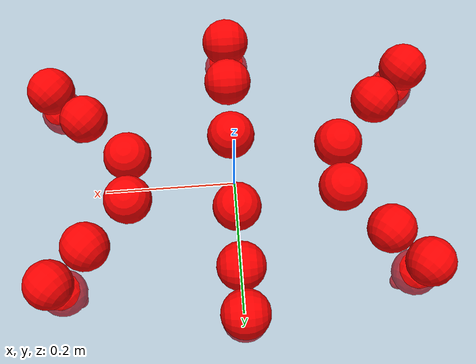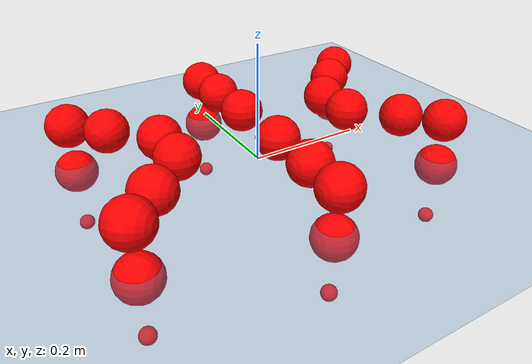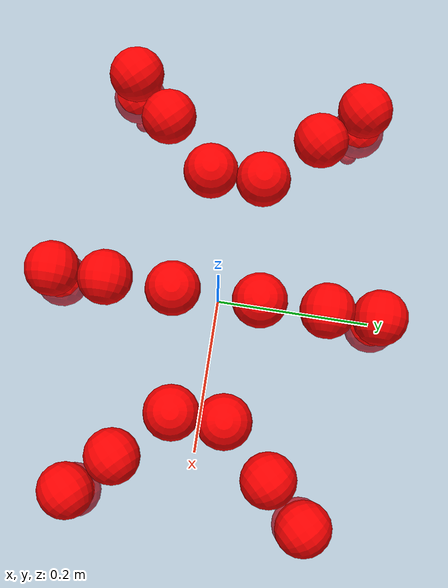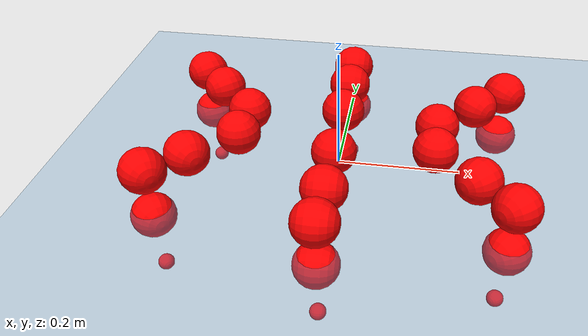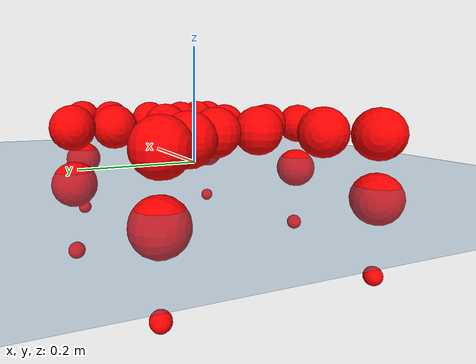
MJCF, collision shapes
<mujoco model="Golem">
  <compiler angle="radian" assetdir="assets" balanceinertia="true" inertiafromgeom="false"/>

  <option timestep="0.005" density="1.2" viscosity="2e-05"/>

  <size nkey="1"/>

  <visual>
    <quality shadowsize="8192"/>
    <map shadowclip="0.5"/>
  </visual>

  <default>
    <default class="/">
      <joint armature="0.01" damping="0.01" frictionloss="0.01"/>
      <geom contype="0" conaffinity="0" group="1" solref="-1000 -80"/>
      <site size="0.01 0.005 0.005" group="5"/>
      <general forcelimited="true" biastype="affine" gainprm="25" biasprm="0 -25 -0.5"/>
      <default class="visual">
        <geom type="mesh" group="2"/>
      </default>
      <default class="collision">
        <geom group="3"/>
      </default>
      <default class="foot">
        <geom size="0.01 0 0" condim="6" group="4" priority="1" solimp="0.015 1 0.01"/>
      </default>
      <default class="reward_collision_sphere">
        <geom group="5" rgba="1 0 0 1"/>
      </default>
    </default>
  </default>

  <asset>
    <texture type="skybox" colorspace="auto" name="//unnamed_texture_0" builtin="gradient" rgb1="0.95 0.95 0.95" rgb2="0.95 0.95 0.95" width="100" height="600"/>
    <texture type="2d" colorspace="auto" name="texplane" builtin="checker" rgb1="0.345 0.575 0.748" rgb2="0.345 0.575 0.748" markrgb="1 1 1" width="512" height="512"/>
    <material name="MatPlane" class="/" texture="texplane" texuniform="true" texrepeat="2 2" specular="0.9"/>
    <mesh name="body" class="/" file="body.stl" scale="0.001 0.001 0.001"/>
    <mesh name="coxa" class="/" file="coxa.stl" scale="0.001 0.001 0.001"/>
    <mesh name="femur" class="/" file="femur.stl" scale="0.001 0.001 0.001"/>
    <mesh name="tibia" class="/" file="tibia.stl" scale="0.001 0.001 0.001"/>
    <mesh name="tarsus" class="/" file="tarsus.stl" scale="0.001 0.001 0.001"/>
  </asset>

  <worldbody>
    <geom name="floor" class="/" size="100 100 0.125" type="plane" group="0" material="MatPlane"/>
    <light name="toplight_shadow" class="/" pos="0 0 5" dir="0.0990148 0.0990148 -0.990148" type="directional" ambient="0.04 0.04 0.04" diffuse="0.55 0.55 0.55" specular="0.12 0.12 0.12"/>
    <light name="toplight_fill" class="/" pos="0 0 5" dir="0.0990148 0.0990148 -0.990148" type="directional" castshadow="false" ambient="0.04 0.04 0.04" diffuse="0.3 0.3 0.3" specular="0.08 0.08 0.08"/>
    <body name="trunk" pos="-3.74941e-06 -0.000384859 0.000403414" quat="1 -0.000210128 8.87457e-05 -7.41709e-05">
      <inertial pos="-0.000583236 0.000742709 -0.00403124" quat="0.999993 -0.00320027 0.000282015 0.00185333" mass="2.63277" diaginertia="0.0104066 0.00116089 0.0113707"/>
      <joint name="//unnamed_joint_0" type="free"/>
      <geom name="//unnamed_geom_1" class="/" pos="0 0 0.0656643" quat="1 0 0 0" type="mesh" rgba="0.9 0.9 0.9 1" mesh="body"/>
      <site name="imu" class="/" pos="0.132655 0.00326489 0.111544" size="0.00893195"/>
      <camera name="track" class="/" pos="0 -1.29411 0" quat="0.707107 0.707107 0 0" mode="trackcom"/>
      <camera name="ego_camera" class="/" pos="0.130849 0 0.102601" quat="-0.5 -0.5 0.5 0.5"/>
      <body name="coxa_RR" pos="-0.178806 -0.0546962 0.0673427" quat="0.382433 -0.000633177 -0.000676276 -0.923983">
        <inertial pos="0.00020729 -0.000727537 0.00132317" quat="0.999988 -0.00244103 -0.00421202 -0.000882614" mass="0.144822" diaginertia="0.0104531 0.00115622 0.0117161"/>
        <joint name="coxa_joint_RR" class="/" pos="0 0 0" axis="0.00538276 0.00280078 -0.999982" range="-3.15844 3.15232" armature="0.00903972" damping="0.00116996" frictionloss="0.00852565"/>
        <geom name="//unnamed_geom_2" class="/" type="mesh" rgba="0.2 0.2 0.2 1" mesh="coxa"/>
        <geom name="//unnamed_geom_3" class="reward_collision_sphere" size="0.0357278" pos="-0.0301958 0 0"/>
        <body name="femur_RR" pos="0.0605019 0.0014317 0.00017067" quat="0.499746 -0.499487 0.500225 0.50054">
          <inertial pos="-0.000189387 0.0015329 -0.000806833" quat="0.999997 -0.00120896 -0.000190893 -0.00208163" mass="0.141211" diaginertia="0.0101226 0.00113414 0.0112342"/>
          <joint name="femur_joint_RR" class="/" pos="0 0 0" axis="0.00145577 -0.000355279 -0.999999" range="-3.15389 3.15374" armature="0.00923044" damping="0.00169936" frictionloss="0.00891394"/>
          <geom name="//unnamed_geom_4" class="/" type="mesh" rgba="0.9 0.9 0.9 1" mesh="femur"/>
          <geom name="//unnamed_geom_5" class="reward_collision_sphere" size="0.0357278"/>
          <body name="tibia_RR" pos="0.000118511 -0.071447 0.000229449" quat="-3.62186e-05 1 -3.93729e-05 2.5345e-05">
            <inertial pos="6.76274e-05 0.00154922 0.000253183" quat="1 -6.26043e-05 0.000231781 -1.56944e-05" mass="0.143033" diaginertia="0.0103411 0.00113867 0.011321"/>
            <joint name="tibia_joint_RR" class="/" pos="0 0 0" axis="0.00157302 0.00674198 0.999976" range="-3.11173 3.14162" armature="0.00929812" damping="0" frictionloss="0.00980941"/>
            <geom name="//unnamed_geom_6" class="/" type="mesh" rgba="0.2 0.2 0.2 1" mesh="tibia"/>
            <geom name="//unnamed_geom_7" class="reward_collision_sphere" size="0.0357278"/>
            <body name="tarsus_RR" pos="0.0871706 0.000595503 -0.00185847" quat="1 7.84339e-05 -5.51091e-06 0.000343923">
              <inertial pos="0.0591383 0.000123133 -0.000147715" quat="0.50148 0.501863 0.496033 0.500603" mass="0.140672" diaginertia="0.010244 0.00112663 0.0114981"/>
              <joint name="tarsus_joint_RR" class="/" pos="0 0 0" axis="8.3087e-05 1.18071e-06 1" range="-3.12351 3.13068" armature="0.00915684" damping="0.0034749" frictionloss="0.00916836"/>
              <geom name="//unnamed_geom_8" class="/" type="mesh" rgba="0.9 0.9 0.9 1" mesh="tarsus"/>
              <geom name="foot_1" class="foot" size="0.00866197" pos="0.112731 0 0" quat="0 -0.707107 0 0.707107"/>
              <geom name="//unnamed_geom_10" class="reward_collision_sphere" size="0.0357278"/>
              <geom name="//unnamed_geom_11" class="reward_collision_sphere" size="0.0133979" pos="0.108202 0 0"/>
              <site name="foot_1" class="foot" pos="0.112731 0 0" quat="0 -0.707107 0 0.707107" size="0.00893195"/>
            </body>
          </body>
        </body>
      </body>
      <body name="coxa_RM" pos="0.00129 -0.087906 0.0650453" quat="0.707096 3.81908e-05 -1.01441e-05 -0.707118">
        <inertial pos="0.000632721 -0.00022417 -0.000395247" quat="0.999961 -0.00305965 0.00826358 0.00102112" mass="0.14744" diaginertia="0.0105756 0.00118099 0.0116616"/>
        <joint name="coxa_joint_RM" class="/" pos="0 0 0" axis="-0.00695022 0.0019586 -0.999974" range="-3.14089 3.156" armature="0.00912833" damping="0.0132247" frictionloss="0.00877617"/>
        <geom name="//unnamed_geom_12" class="/" type="mesh" rgba="0.2 0.2 0.2 1" mesh="coxa"/>
        <geom name="//unnamed_geom_13" class="reward_collision_sphere" size="0.0357278" pos="-0.0301958 0 0"/>
        <body name="femur_RM" pos="0.0571898 -0.000981518 -0.000441182" quat="0.499894 -0.499979 0.500267 0.49986">
          <inertial pos="-0.000221511 -0.000287917 -0.000131807" quat="0.999998 0.000857584 -0.000239426 -0.00179074" mass="0.141391" diaginertia="0.010255 0.00114144 0.0115313"/>
          <joint name="femur_joint_RM" class="/" pos="0 0 0" axis="-0.000189806 3.45051e-05 -1" range="-3.1297 3.12015" armature="0.00884663" damping="0.0065274" frictionloss="0.00939737"/>
          <geom name="//unnamed_geom_14" class="/" type="mesh" rgba="0.9 0.9 0.9 1" mesh="femur"/>
          <geom name="//unnamed_geom_15" class="reward_collision_sphere" size="0.0357278"/>
          <body name="tibia_RM" pos="0.00198232 -0.0688864 -0.000913875" quat="-0.000120613 1 0.000158366 0.000289286">
            <inertial pos="0.000356437 0.000253692 0.000328777" quat="1 -0.000623157 0.000220853 -0.000437806" mass="0.144784" diaginertia="0.0103585 0.00113099 0.0114904"/>
            <joint name="tibia_joint_RM" class="/" pos="0 0 0" axis="-0.00283051 -0.00501748 0.999983" range="-3.15913 3.13493" armature="0.008275" damping="0.00697829" frictionloss="0.00952669"/>
            <geom name="//unnamed_geom_16" class="/" type="mesh" rgba="0.2 0.2 0.2 1" mesh="tibia"/>
            <geom name="//unnamed_geom_17" class="reward_collision_sphere" size="0.0357278"/>
            <body name="tarsus_RM" pos="0.0862225 -0.00156509 0.000648467" quat="1 -3.92106e-05 -2.24775e-05 5.16442e-05">
              <inertial pos="0.0603101 0.00101539 0.000232085" quat="0.499402 0.500206 0.499209 0.501181" mass="0.145207" diaginertia="0.0104854 0.00115245 0.0115452"/>
              <joint name="tarsus_joint_RM" class="/" pos="0 0 0" axis="-0.00325549 0.00272139 0.999991" range="-3.15761 3.13653" armature="0.00936822" damping="0.0036036" frictionloss="0.00887886"/>
              <geom name="//unnamed_geom_18" class="/" type="mesh" rgba="0.9 0.9 0.9 1" mesh="tarsus"/>
              <geom name="foot_2" class="foot" size="0.00914874" pos="0.112731 0 0" quat="0 -0.707107 0 0.707107"/>
              <geom name="//unnamed_geom_20" class="reward_collision_sphere" size="0.0357278"/>
              <geom name="//unnamed_geom_21" class="reward_collision_sphere" size="0.0133979" pos="0.108202 0 0"/>
              <site name="foot_2" class="foot" pos="0.112731 0 0" quat="0 -0.707107 0 0.707107" size="0.00893195"/>
            </body>
          </body>
        </body>
      </body>
      <body name="coxa_RF" pos="0.177956 -0.0556343 0.0666009" quat="0.923884 -2.66551e-05 -2.40436e-06 -0.382674">
        <inertial pos="-0.00129671 0.000327557 -6.98004e-05" quat="0.999997 -0.00149442 -0.0012642 0.00167014" mass="0.143059" diaginertia="0.0105659 0.00117079 0.0115904"/>
        <joint name="coxa_joint_RF" class="/" pos="0 0 0" axis="0.00383277 0.00421074 -0.999984" range="-3.13186 3.14753" armature="0.00878668" damping="0.0166001" frictionloss="0.00942963"/>
        <geom name="//unnamed_geom_22" class="/" type="mesh" rgba="0.2 0.2 0.2 1" mesh="coxa"/>
        <geom name="//unnamed_geom_23" class="reward_collision_sphere" size="0.0357278" pos="-0.0301958 0 0"/>
        <body name="femur_RF" pos="0.0604996 0.000272374 -0.000378044" quat="0.500132 -0.500128 0.499695 0.500044">
          <inertial pos="0.000662948 -0.000449754 0.000398984" quat="0.999992 0.00232665 -0.000141699 -0.00333725" mass="0.143611" diaginertia="0.0103567 0.00113383 0.0114336"/>
          <joint name="femur_joint_RF" class="/" pos="0 0 0" axis="-0.00406111 0.00260819 -0.999988" stiffness="8.24619e-05" range="-3.15913 3.13995" armature="0.00919551" damping="0.00786826" frictionloss="0.00917016"/>
          <geom name="//unnamed_geom_24" class="/" type="mesh" rgba="0.9 0.9 0.9 1" mesh="femur"/>
          <geom name="//unnamed_geom_25" class="reward_collision_sphere" size="0.0357278"/>
          <body name="tibia_RF" pos="0.00150559 -0.0705541 7.82817e-05" quat="9.40077e-05 1 0.000541218 0.000180388">
            <inertial pos="-0.000175091 -0.000990598 -0.000546668" quat="0.999986 -0.00372953 -0.00288609 0.00225424" mass="0.137362" diaginertia="0.0101924 0.00110604 0.0113257"/>
            <joint name="tibia_joint_RF" class="/" pos="0 0 0" axis="0.000836108 0.00427969 0.99999" range="-3.12057 3.13631" armature="0.00887131" damping="0" frictionloss="0.00921487"/>
            <geom name="//unnamed_geom_26" class="/" type="mesh" rgba="0.2 0.2 0.2 1" mesh="tibia"/>
            <geom name="//unnamed_geom_27" class="reward_collision_sphere" size="0.0357278"/>
            <body name="tarsus_RF" pos="0.0859015 0.000583422 -0.000671386" quat="1 -3.10512e-05 -3.61254e-05 -7.21996e-05">
              <inertial pos="0.0591818 0.000368505 -0.000554037" quat="0.498745 0.50354 0.499958 0.497738" mass="0.144385" diaginertia="0.0105831 0.00113874 0.011573"/>
              <joint name="tarsus_joint_RF" class="/" pos="0 0 0" axis="-0.0113665 0.00380783 0.999928" range="-3.14942 3.13836" armature="0.00906518" damping="0.00666374" frictionloss="0.00859848"/>
              <geom name="//unnamed_geom_28" class="/" type="mesh" rgba="0.9 0.9 0.9 1" mesh="tarsus"/>
              <geom name="foot_3" class="foot" size="0.00859541" pos="0.112731 0 0" quat="0 -0.707107 0 0.707107"/>
              <geom name="//unnamed_geom_30" class="reward_collision_sphere" size="0.0357278"/>
              <geom name="//unnamed_geom_31" class="reward_collision_sphere" size="0.0133979" pos="0.108202 0 0"/>
              <site name="foot_3" class="foot" pos="0.112731 0 0" quat="0 -0.707107 0 0.707107" size="0.00893195"/>
            </body>
          </body>
        </body>
      </body>
      <body name="coxa_LR" pos="-0.178072 0.056238 0.0668635" quat="0.382219 1.58323e-05 6.60384e-05 0.924072">
        <inertial pos="0.00114124 0.000279044 -0.000342559" quat="1 -1.73156e-05 -0.000522674 -0.000257343" mass="0.142759" diaginertia="0.01045 0.00114141 0.0114151"/>
        <joint name="coxa_joint_LR" class="/" pos="0 0 0" axis="-0.00544741 0.00177102 -0.999984" range="-3.11927 3.16227" armature="0.00883182" damping="0.0105453" frictionloss="0.00891615"/>
        <geom name="//unnamed_geom_32" class="/" type="mesh" rgba="0.2 0.2 0.2 1" mesh="coxa"/>
        <geom name="//unnamed_geom_33" class="reward_collision_sphere" size="0.0357278" pos="-0.0301958 0 0"/>
        <body name="femur_LR" pos="0.061559 -0.00257676 -0.00116607" quat="0.500061 -0.499775 0.49998 0.500185">
          <inertial pos="0.000403685 -0.000200752 -0.000983828" quat="0.999972 0.00728518 -0.00117602 0.00101461" mass="0.144601" diaginertia="0.0103776 0.00114648 0.0114517"/>
          <joint name="femur_joint_LR" class="/" pos="0 0 0" axis="0.00831249 0.00769541 0.999936" range="-3.12064 3.12048" armature="0.00977603" damping="0.00640073" frictionloss="0.00878598"/>
          <geom name="//unnamed_geom_34" class="/" type="mesh" rgba="0.9 0.9 0.9 1" mesh="femur"/>
          <geom name="//unnamed_geom_35" class="reward_collision_sphere" size="0.0357278"/>
          <body name="tibia_LR" pos="0.000633267 -0.070726 -0.0018658" quat="0.00024125 1 0.000151021 -0.000270974">
            <inertial pos="0.000679893 -0.000572599 0.000480104" quat="1 0.000799087 -0.000224487 -0.000135264" mass="0.144247" diaginertia="0.0103375 0.00111898 0.0114951"/>
            <joint name="tibia_joint_LR" class="/" pos="0 0 0" axis="-1.1903e-05 -3.20996e-05 -1" range="-3.10991 3.13967" armature="0.00874142" damping="0.00886638" frictionloss="0.00896422"/>
            <geom name="//unnamed_geom_36" class="/" type="mesh" rgba="0.2 0.2 0.2 1" mesh="tibia"/>
            <geom name="//unnamed_geom_37" class="reward_collision_sphere" size="0.0357278"/>
            <body name="tarsus_LR" pos="0.0871537 0.00099509 0.0015545" quat="1 -7.88507e-05 7.75437e-06 4.20953e-05">
              <inertial pos="0.0610602 -0.000445762 0.000440745" quat="0.500045 0.499646 0.5004 0.499908" mass="0.141722" diaginertia="0.0104372 0.00117339 0.0113635"/>
              <joint name="tarsus_joint_LR" class="/" pos="0 0 0" axis="0.00204637 -0.00179259 -0.999996" range="-3.13777 3.12728" armature="0.00892709" damping="0.000360176" frictionloss="0.00921771"/>
              <geom name="//unnamed_geom_38" class="/" type="mesh" rgba="0.9 0.9 0.9 1" mesh="tarsus"/>
              <geom name="foot_4" class="foot" size="0.00865626" pos="0.112731 0 0" quat="0.707107 0 -0.707107 0"/>
              <geom name="//unnamed_geom_40" class="reward_collision_sphere" size="0.0357278"/>
              <geom name="//unnamed_geom_41" class="reward_collision_sphere" size="0.0133979" pos="0.108202 0 0"/>
              <site name="foot_4" class="foot" pos="0.112731 0 0" quat="0.707107 0 -0.707107 0" size="0.00893195"/>
            </body>
          </body>
        </body>
      </body>
      <body name="coxa_LM" pos="1.86312e-05 0.0840027 0.0674891" quat="0.707288 0.000227145 -0.00011222 0.706925">
        <inertial pos="0.000333242 -0.000177073 -0.000590151" quat="0.999999 -2.64253e-05 -0.00110761 0.000623923" mass="0.143374" diaginertia="0.0101431 0.00112842 0.0112836"/>
        <joint name="coxa_joint_LM" class="/" pos="0 0 0" axis="0.0015821 0.00294685 -0.999994" range="-3.14329 3.14224" armature="0.00857779" damping="0.00491702" frictionloss="0.00897469"/>
        <geom name="//unnamed_geom_42" class="/" type="mesh" rgba="0.2 0.2 0.2 1" mesh="coxa"/>
        <geom name="//unnamed_geom_43" class="reward_collision_sphere" size="0.0357278" pos="-0.0301958 0 0"/>
        <body name="femur_LM" pos="0.0563917 3.06259e-05 -0.000477464" quat="0.499823 -0.500088 0.50005 0.500039">
          <inertial pos="-8.95665e-05 4.29311e-05 -0.00194704" quat="1 0.000339869 0.000132849 0.000520501" mass="0.144833" diaginertia="0.0104555 0.00115562 0.0114723"/>
          <joint name="femur_joint_LM" class="/" pos="0 0 0" axis="-0.00100513 -0.00601639 0.999981" range="-3.14533 3.10434" armature="0.00917466" damping="0" frictionloss="0.00863393"/>
          <geom name="//unnamed_geom_44" class="/" type="mesh" rgba="0.9 0.9 0.9 1" mesh="femur"/>
          <geom name="//unnamed_geom_45" class="reward_collision_sphere" size="0.0357278"/>
          <body name="tibia_LM" pos="-0.000256671 -0.0665995 0.00124655" quat="-0.000173677 1 -0.000268822 0.000386847">
            <inertial pos="-0.00109363 0.000299012 -0.000265811" quat="0.999998 0.000119226 0.00120297 -0.00128389" mass="0.137669" diaginertia="0.0100685 0.00110336 0.011059"/>
            <joint name="tibia_joint_LM" class="/" pos="0 0 0" axis="-0.002477 -0.00343383 -0.999991" range="-3.12943 3.15722" armature="0.00989117" damping="0" frictionloss="0.00914484"/>
            <geom name="//unnamed_geom_46" class="/" type="mesh" rgba="0.2 0.2 0.2 1" mesh="tibia"/>
            <geom name="//unnamed_geom_47" class="reward_collision_sphere" size="0.0357278"/>
            <body name="tarsus_LM" pos="0.088962 -0.000355658 -0.000981791" quat="1 -0.000204408 0.000181931 -0.000180229">
              <inertial pos="0.0618973 -0.000958384 -0.000354206" quat="0.497448 0.503467 0.498998 0.500067" mass="0.139592" diaginertia="0.0101278 0.00107833 0.0112135"/>
              <joint name="tarsus_joint_LM" class="/" pos="0 0 0" axis="0.00182556 0.000313853 -0.999998" stiffness="0.00207796" range="-3.1395 3.14026" armature="0.00882631" damping="0.0138793" frictionloss="0.00969833"/>
              <geom name="//unnamed_geom_48" class="/" type="mesh" rgba="0.9 0.9 0.9 1" mesh="tarsus"/>
              <geom name="foot_5" class="foot" size="0.00883169" pos="0.112731 0 0" quat="0.707107 0 -0.707107 0"/>
              <geom name="//unnamed_geom_50" class="reward_collision_sphere" size="0.0357278"/>
              <geom name="//unnamed_geom_51" class="reward_collision_sphere" size="0.0133979" pos="0.108202 0 0"/>
              <site name="foot_5" class="foot" pos="0.112731 0 0" quat="0.707107 0 -0.707107 0" size="0.00893195"/>
            </body>
          </body>
        </body>
      </body>
      <body name="coxa_LF" pos="0.179285 0.0535899 0.0668377" quat="0.923873 1.27152e-05 0.000141481 0.382698">
        <inertial pos="-0.00110751 -0.0018077 0.000298466" quat="0.999995 0.00231824 0.00046732 -0.00187203" mass="0.142386" diaginertia="0.0102788 0.00110246 0.0113488"/>
        <joint name="coxa_joint_LF" class="/" pos="0 0 0" axis="0.00292977 0.00206607 -0.999994" range="-3.1243 3.13632" armature="0.00840959" damping="0" frictionloss="0.00885351"/>
        <geom name="//unnamed_geom_52" class="/" type="mesh" rgba="0.2 0.2 0.2 1" mesh="coxa"/>
        <geom name="//unnamed_geom_53" class="reward_collision_sphere" size="0.0357278" pos="-0.0301958 0 0"/>
        <body name="femur_LF" pos="0.0600949 0.00181736 0.000430887" quat="0.5 -0.499999 0.500001 0.499999">
          <inertial pos="-7.04406e-05 0.000562674 -0.000570868" quat="1 -0.000247445 -0.000281856 0.000439843" mass="0.139657" diaginertia="0.0100128 0.00111991 0.0112364"/>
          <joint name="femur_joint_LF" class="/" pos="0 0 0" axis="-0.00664696 0.00218077 0.999976" range="-3.12068 3.14586" armature="0.00897266" damping="0.000726881" frictionloss="0.00907867"/>
          <geom name="//unnamed_geom_54" class="/" type="mesh" rgba="0.9 0.9 0.9 1" mesh="femur"/>
          <geom name="//unnamed_geom_55" class="reward_collision_sphere" size="0.0357278"/>
          <body name="tibia_LF" pos="-0.000376935 -0.0718557 -0.000447017" quat="0.000168348 1 0.000315005 -0.00020618">
            <inertial pos="-0.000587066 0.00132931 0.000839569" quat="0.999999 -0.000618312 -0.000875694 -0.000766896" mass="0.142055" diaginertia="0.0103908 0.00114105 0.0114959"/>
            <joint name="tibia_joint_LF" class="/" pos="0 0 0" axis="-0.00148736 -0.000866644 -0.999999" range="-3.13451 3.13196" armature="0.00941957" damping="0" frictionloss="0.00871929"/>
            <geom name="//unnamed_geom_56" class="/" type="mesh" rgba="0.2 0.2 0.2 1" mesh="tibia"/>
            <geom name="//unnamed_geom_57" class="reward_collision_sphere" size="0.0357278"/>
            <body name="tarsus_LF" pos="0.0898738 0.000480729 -0.00120931" quat="1 -2.27312e-06 -6.60836e-05 -5.46594e-05">
              <inertial pos="0.0598955 -9.83506e-05 0.000429711" quat="0.503315 0.503353 0.491347 0.501885" mass="0.144273" diaginertia="0.0103649 0.00113481 0.0112971"/>
              <joint name="tarsus_joint_LF" class="/" pos="0 0 0" axis="0.00819771 0.00454816 -0.999956" stiffness="0.0290866" range="-3.15768 3.13896" armature="0.00880982" damping="0.0243716" frictionloss="0.00936617"/>
              <geom name="//unnamed_geom_58" class="/" type="mesh" rgba="0.9 0.9 0.9 1" mesh="tarsus"/>
              <geom name="foot_6" class="foot" size="0.00894938" pos="0.112731 0 0" quat="0.707107 0 -0.707107 0"/>
              <geom name="//unnamed_geom_60" class="reward_collision_sphere" size="0.0357278"/>
              <geom name="//unnamed_geom_61" class="reward_collision_sphere" size="0.0133979" pos="0.108202 0 0"/>
              <site name="foot_6" class="foot" pos="0.112731 0 0" quat="0.707107 0 -0.707107 0" size="0.00893195"/>
            </body>
          </body>
        </body>
      </body>
    </body>
  </worldbody>

  <contact>
    <pair class="/" geom1="floor" geom2="foot_1" name="//unnamed_contact_0"/>
    <pair class="/" geom1="floor" geom2="foot_2" name="//unnamed_contact_1"/>
    <pair class="/" geom1="floor" geom2="foot_3" name="//unnamed_contact_2"/>
    <pair class="/" geom1="floor" geom2="foot_4" name="//unnamed_contact_3"/>
    <pair class="/" geom1="floor" geom2="foot_5" name="//unnamed_contact_4"/>
    <pair class="/" geom1="floor" geom2="foot_6" name="//unnamed_contact_5"/>
  </contact>

  <actuator>
    <general name="coxa_joint_RR" class="/" joint="coxa_joint_RR" forcerange="-6.54395 6.54395" gainprm="21.4576" biasprm="0 -21.4576 -0.455908"/>
    <general name="femur_joint_RR" class="/" joint="femur_joint_RR" forcerange="-6.41272 6.41272" gainprm="21.4576" biasprm="0 -21.4576 -0.455908"/>
    <general name="tibia_joint_RR" class="/" joint="tibia_joint_RR" forcerange="-6.46949 6.46949" gainprm="21.4576" biasprm="0 -21.4576 -0.455908"/>
    <general name="tarsus_joint_RR" class="/" joint="tarsus_joint_RR" forcerange="-6.6386 6.6386" gainprm="21.4576" biasprm="0 -21.4576 -0.455908"/>
    <general name="coxa_joint_RM" class="/" joint="coxa_joint_RM" forcerange="-6.75399 6.75399" gainprm="21.4576" biasprm="0 -21.4576 -0.455908"/>
    <general name="femur_joint_RM" class="/" joint="femur_joint_RM" forcerange="-6.65074 6.65074" gainprm="21.4576" biasprm="0 -21.4576 -0.455908"/>
    <general name="tibia_joint_RM" class="/" joint="tibia_joint_RM" forcerange="-6.3757 6.3757" gainprm="21.4576" biasprm="0 -21.4576 -0.455908"/>
    <general name="tarsus_joint_RM" class="/" joint="tarsus_joint_RM" forcerange="-6.27927 6.27927" gainprm="21.4576" biasprm="0 -21.4576 -0.455908"/>
    <general name="coxa_joint_RF" class="/" joint="coxa_joint_RF" forcerange="-6.40809 6.40809" gainprm="21.4576" biasprm="0 -21.4576 -0.455908"/>
    <general name="femur_joint_RF" class="/" joint="femur_joint_RF" forcerange="-6.64557 6.64557" gainprm="21.4576" biasprm="0 -21.4576 -0.455908"/>
    <general name="tibia_joint_RF" class="/" joint="tibia_joint_RF" forcerange="-6.31031 6.31031" gainprm="21.4576" biasprm="0 -21.4576 -0.455908"/>
    <general name="tarsus_joint_RF" class="/" joint="tarsus_joint_RF" forcerange="-6.61795 6.61795" gainprm="21.4576" biasprm="0 -21.4576 -0.455908"/>
    <general name="coxa_joint_LR" class="/" joint="coxa_joint_LR" forcerange="-6.5405 6.5405" gainprm="21.4576" biasprm="0 -21.4576 -0.455908"/>
    <general name="femur_joint_LR" class="/" joint="femur_joint_LR" forcerange="-6.49406 6.49406" gainprm="21.4576" biasprm="0 -21.4576 -0.455908"/>
    <general name="tibia_joint_LR" class="/" joint="tibia_joint_LR" forcerange="-6.40727 6.40727" gainprm="21.4576" biasprm="0 -21.4576 -0.455908"/>
    <general name="tarsus_joint_LR" class="/" joint="tarsus_joint_LR" forcerange="-6.50257 6.50257" gainprm="21.4576" biasprm="0 -21.4576 -0.455908"/>
    <general name="coxa_joint_LM" class="/" joint="coxa_joint_LM" forcerange="-6.51609 6.51609" gainprm="21.4576" biasprm="0 -21.4576 -0.455908"/>
    <general name="femur_joint_LM" class="/" joint="femur_joint_LM" forcerange="-6.4679 6.4679" gainprm="21.4576" biasprm="0 -21.4576 -0.455908"/>
    <general name="tibia_joint_LM" class="/" joint="tibia_joint_LM" forcerange="-6.49979 6.49979" gainprm="21.4576" biasprm="0 -21.4576 -0.455908"/>
    <general name="tarsus_joint_LM" class="/" joint="tarsus_joint_LM" forcerange="-6.28326 6.28326" gainprm="21.4576" biasprm="0 -21.4576 -0.455908"/>
    <general name="coxa_joint_LF" class="/" joint="coxa_joint_LF" forcerange="-6.73116 6.73116" gainprm="21.4576" biasprm="0 -21.4576 -0.455908"/>
    <general name="femur_joint_LF" class="/" joint="femur_joint_LF" forcerange="-6.48352 6.48352" gainprm="21.4576" biasprm="0 -21.4576 -0.455908"/>
    <general name="tibia_joint_LF" class="/" joint="tibia_joint_LF" forcerange="-6.56802 6.56802" gainprm="21.4576" biasprm="0 -21.4576 -0.455908"/>
    <general name="tarsus_joint_LF" class="/" joint="tarsus_joint_LF" forcerange="-6.53692 6.53692" gainprm="21.4576" biasprm="0 -21.4576 -0.455908"/>
  </actuator>

  <sensor>
    <gyro site="imu" name="imu_angular_velocity"/>
    <velocimeter site="imu" name="imu_linear_velocity"/>
    <framelinvel objtype="site" objname="foot_1" name="foot_1_global_linear_velocity"/>
    <framelinvel objtype="site" objname="foot_2" name="foot_2_global_linear_velocity"/>
    <framelinvel objtype="site" objname="foot_3" name="foot_3_global_linear_velocity"/>
    <framelinvel objtype="site" objname="foot_4" name="foot_4_global_linear_velocity"/>
    <framelinvel objtype="site" objname="foot_5" name="foot_5_global_linear_velocity"/>
    <framelinvel objtype="site" objname="foot_6" name="foot_6_global_linear_velocity"/>
  </sensor>

  <keyframe>
    <key name="home" qpos="0 0 0.1457 1 0 0 0 0 0 0 0 0 0 0 0 0 0 0 0 0 0 0 0 0 0 0 0 0 0 0 0"/>
  </keyframe>
</mujoco>
